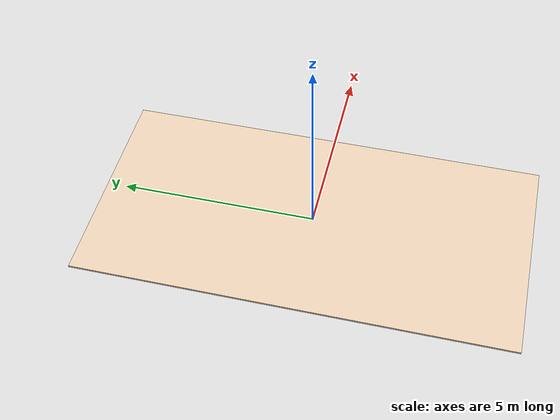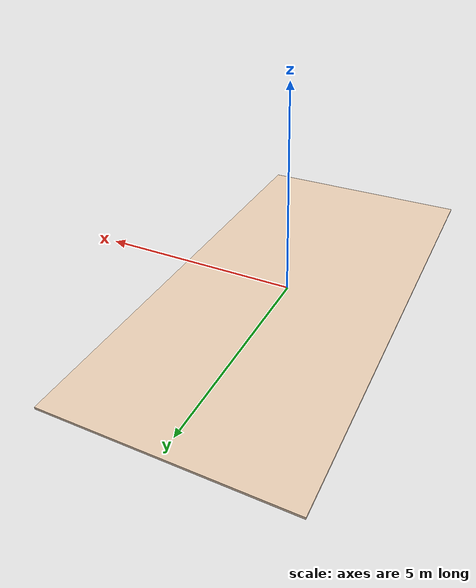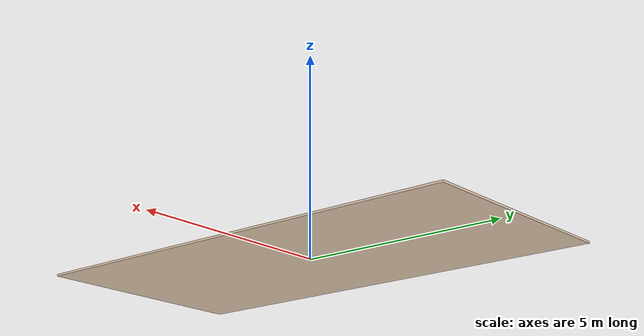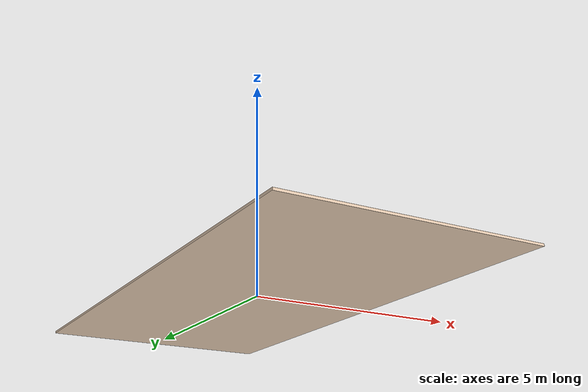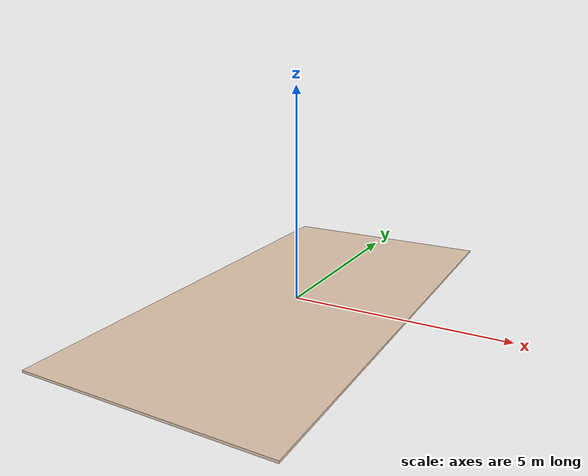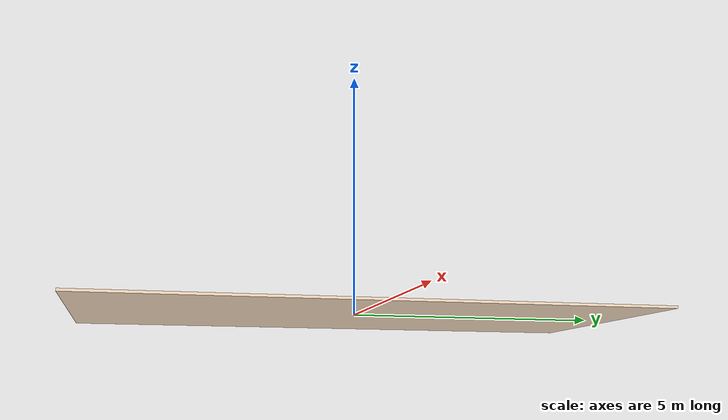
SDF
<?xml version="1.0"?>
<sdf version="1.7">
  <model name="table_top">
    <link name="table_top_link">
      <inertial>
        <mass>100</mass>
        <inertia>
            <ixx>1008.3541666666667</ixx> <ixy>0.0</ixy> <ixz>0.0</ixz> <iyy>252.10416666666669 </iyy> <iyz>0.0</iyz> <izz>1260.4166666666667</izz>
        </inertia>
      </inertial>
      <visual name="visual">
        <pose>0 0 0 0 0 0</pose>
        <geometry>
          <box>
            <size>5.5 11.0 0.05</size>
          </box>
        </geometry>
        <material>
         <diffuse>0.9 0.8 0.7 1.0</diffuse>
        </material>
      </visual>
      <collision name="collision">
        <pose>0 0 0 0 0 0</pose>
        <geometry>
          <box>
            <size>5.5 11.0 0.05</size>
          </box>
        </geometry>
      </collision>
    </link>

  </model>
</sdf>
